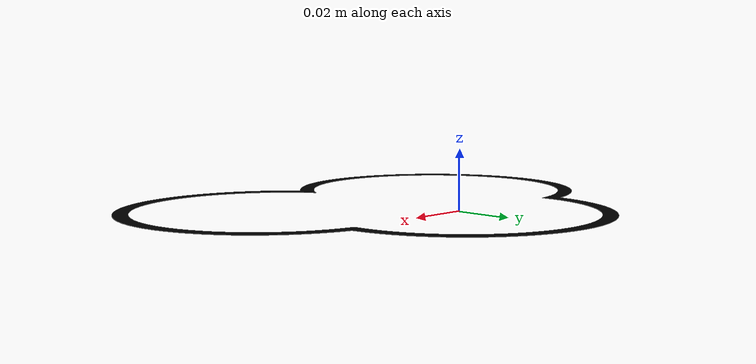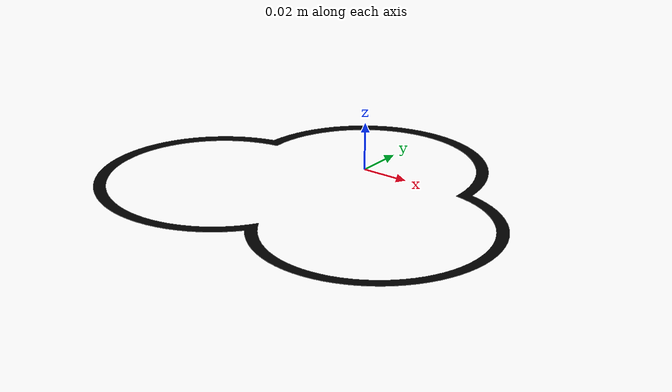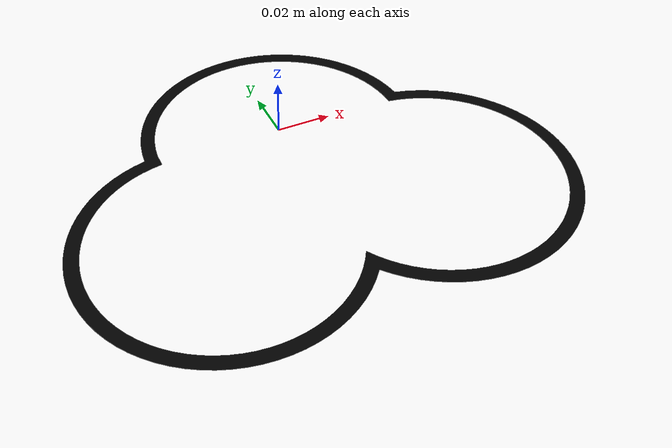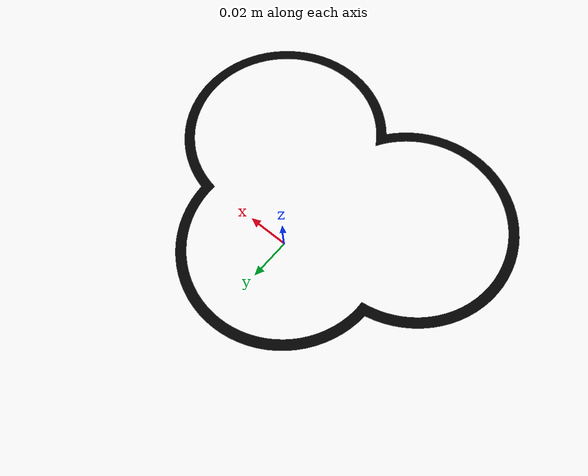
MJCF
<?xml version="1.0" ?>
<!-- Generated using onshape-to-robot -->
<!-- Onshape https://cad.onshape.com/documents/fab2eef12ec093763b6fbb35/w/72ee43692e262a7f0bf2b5f1/e/8a6fb12b81451f91fb61850d -->
<mujoco model="goomba_track">
  <compiler angle="radian" meshdir="assets" autolimits="true"/>
  <default>
    <default class="goomba_track">
      <joint frictionloss="0.1" armature="0.005"/>
      <position kp="50" dampratio="1"/>
      <default class="visual">
        <geom type="mesh" contype="0" conaffinity="0" group="2"/>
      </default>
      <default class="collision">
        <geom group="3"/>
      </default>
    </default>
  </default>
  <worldbody>
    <!-- Link goomba_track -->
    <body name="goomba_track" pos="0 0 0" quat="1 0 0 0" childclass="goomba_track">
      <freejoint name="goomba_track_freejoint"/>
      <inertial pos="0 0 0" mass="1e-09" fullinertia="1e-09 1e-09 1e-09 0 0 0"/>
      <!-- Part goomba_track -->
      <geom type="mesh" class="visual" pos="0 0 0" quat="1 0 0 0" mesh="goomba_track" material="goomba_track_material"/>
      <geom type="mesh" class="collision" pos="0 0 0" quat="1 0 0 0" mesh="goomba_track" material="goomba_track_material"/>
    </body>
  </worldbody>
  <asset>
    <mesh file="goomba_track.stl"/>
    <material name="goomba_track_material" rgba="0 0 0 1"/>
  </asset>
  <actuator/>
  <equality/>
</mujoco>
